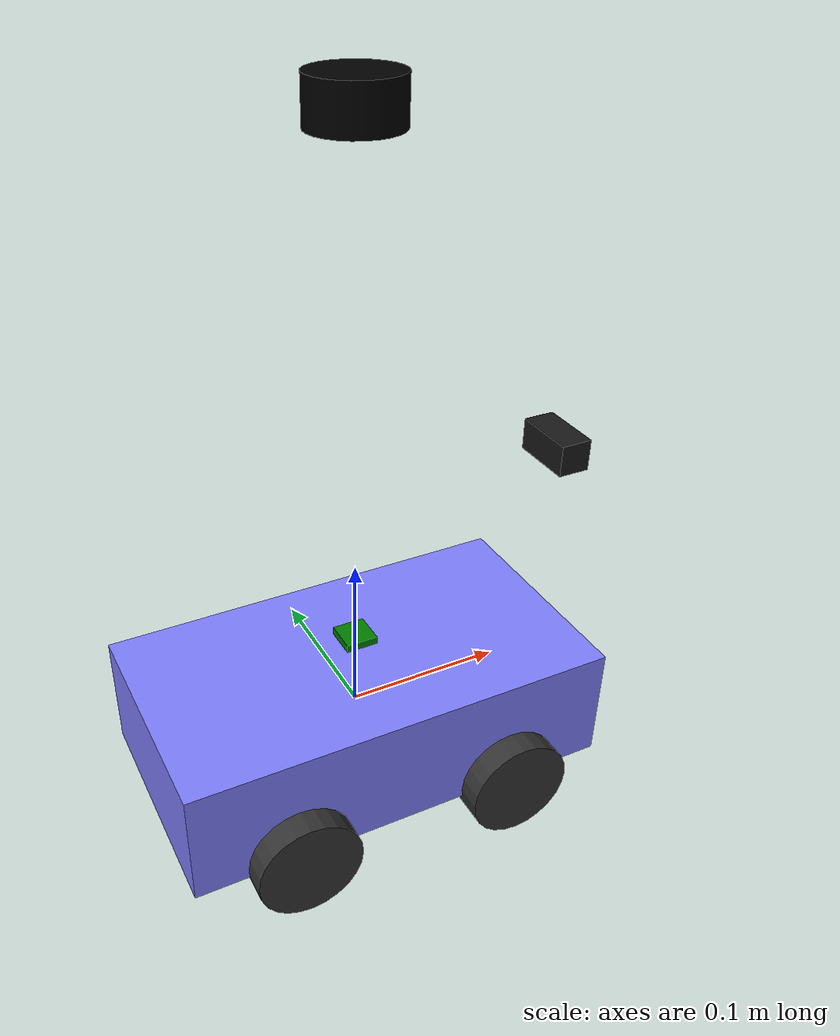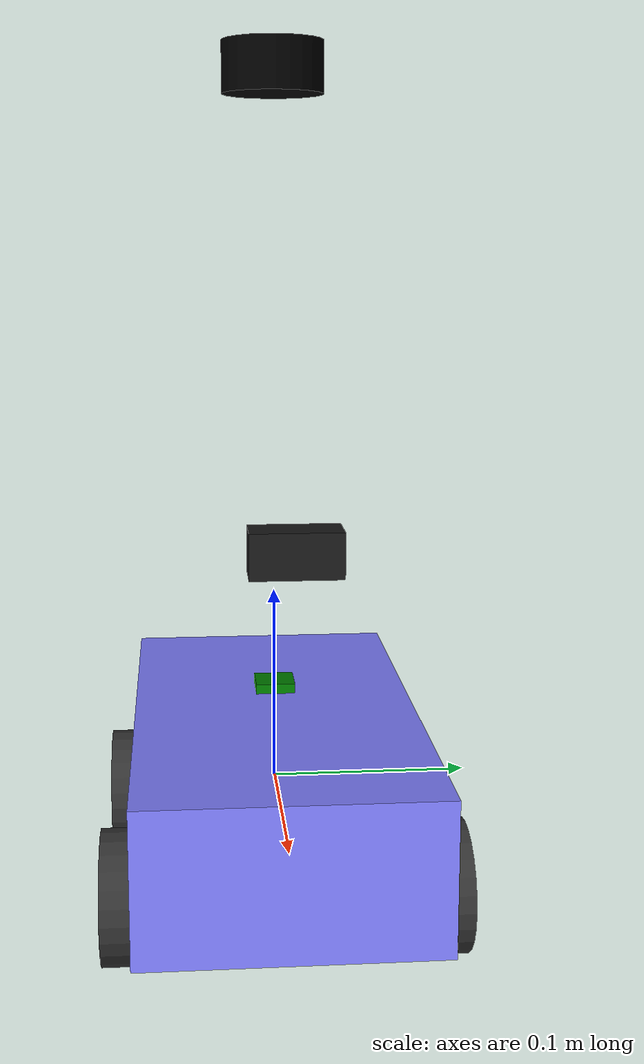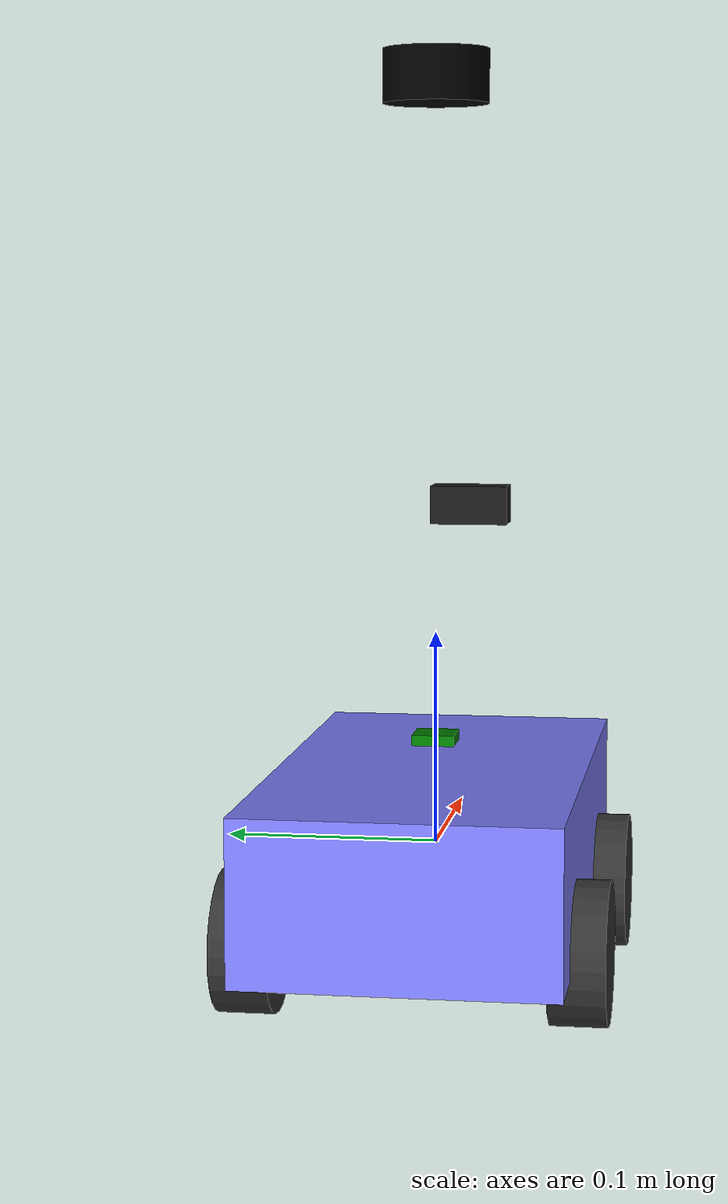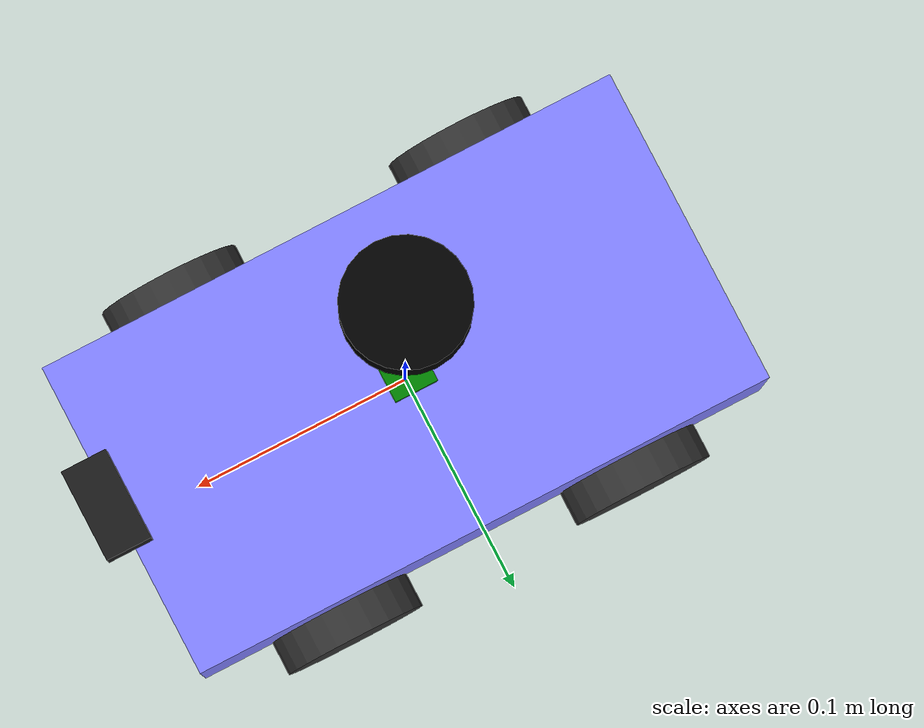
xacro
<?xml version="1.0" ?>
<robot xmlns:xacro="http://www.ros.org/wiki/xacro" name="smb">

  <xacro:property name="chassis_length"  value="0.27"/>
  <xacro:property name="chassis_width"   value="0.145"/>
  <xacro:property name="chassis_height"  value="0.075"/>
  <xacro:property name="wheel_radius"    value="0.0325"/>
  <xacro:property name="wheel_thickness" value="0.026"/>
  <xacro:property name="track"           value="0.150"/>
  <xacro:property name="wheelbase"       value="0.140"/>
  <xacro:property name="wheel_offset_x"  value="${wheelbase/2}"/>

  <xacro:property name="lidar_offset_z" value="0.36"/>
  <xacro:property name="imu_offset_z"   value="0.05"/>

  <!-- Masses: chassis dominates the dynamics. -->
  <xacro:property name="chassis_mass"   value="2.0"/>
  <xacro:property name="wheel_mass"     value="0.06"/>

  <link name="base_link">
    <inertial>
      <origin xyz="0 0 0" rpy="0 0 0"/>
      <mass value="${chassis_mass}"/>
      <inertia
        ixx="0.0109" ixy="0" ixz="0"
        iyy="0.0178" iyz="0"
        izz="0.0231"/>
    </inertial>
    <visual>
      <origin xyz="0 0 0" rpy="0 0 0"/>
      <geometry>
        <box size="${chassis_length} ${chassis_width} ${chassis_height}"/>
      </geometry>
      <material name="chassis_blue">
        <color rgba="0.5 0.5 1.0 1"/>
      </material>
    </visual>
    <collision>
      <origin xyz="0 0 0" rpy="0 0 0"/>
      <geometry>
        <box size="${chassis_length} ${chassis_width} ${chassis_height}"/>
      </geometry>
    </collision>
  </link>

  <!-- Macro for 4WD continuous wheels -->
  <xacro:macro name="diff_wheel" params="name offset_x offset_y">
    <joint name="${name}_joint" type="continuous">
      <parent link="base_link"/>
      <child link="${name}"/>
      <origin xyz="${offset_x} ${offset_y} -${wheel_radius}" rpy="-1.5707 0 0"/>
      <axis xyz="0 0 1"/>
      <dynamics damping="0.1" friction="0.1"/>
    </joint>
    <link name="${name}">
      <inertial>
        <origin xyz="0 0 0" rpy="0 0 0"/>
        <mass value="${wheel_mass}"/>
        <inertia
          ixx="0.0000192" ixy="0" ixz="0"
          iyy="0.0000192" iyz="0"
          izz="0.0000317"/>
      </inertial>
      <visual>
        <origin xyz="0 0 0" rpy="0 0 0"/>
        <geometry>
          <cylinder radius="${wheel_radius}" length="${wheel_thickness}"/>
        </geometry>
        <material name="wheel_dark">
          <color rgba="0.2 0.2 0.2 1"/>
        </material>
      </visual>
      <collision>
        <origin xyz="0 0 0" rpy="0 0 0"/>
        <geometry>
          <cylinder radius="${wheel_radius}" length="${wheel_thickness}"/>
        </geometry>
      </collision>
    </link>
  </xacro:macro>

  <!-- 4 continuous wheels for 4WD differential drive -->
  <xacro:diff_wheel name="front_left_wheel"  offset_x="${wheel_offset_x}"  offset_y="${track/2}"/>
  <xacro:diff_wheel name="rear_left_wheel"   offset_x="-${wheel_offset_x}" offset_y="${track/2}"/>
  <xacro:diff_wheel name="front_right_wheel" offset_x="${wheel_offset_x}"  offset_y="-${track/2}"/>
  <xacro:diff_wheel name="rear_right_wheel"  offset_x="-${wheel_offset_x}" offset_y="-${track/2}"/>

  <xacro:property name="lidar_offset_x" value="0.0"/>
  <joint name="lidar_joint" type="fixed">
    <parent link="base_link"/>
    <child link="laser_frame"/>
    <origin xyz="${lidar_offset_x} 0 ${lidar_offset_z}" rpy="0 0 1.5708"/>
  </joint>
  <link name="laser_frame">
    <inertial>
      <origin xyz="0 0 0" rpy="0 0 0"/>
      <mass value="0.1"/>
      <inertia ixx="0.001" ixy="0" ixz="0" iyy="0.001" iyz="0" izz="0.001"/>
    </inertial>
    <visual>
      <origin xyz="0 0 0" rpy="0 0 0"/>
      <geometry>
        <cylinder radius="0.025" length="0.025"/>
      </geometry>
      <material name="lidar_black">
        <color rgba="0 0 0 1"/>
      </material>
    </visual>
    <collision>
      <origin xyz="0 0 0" rpy="0 0 0"/>
      <geometry>
        <cylinder radius="0.025" length="0.025"/>
      </geometry>
    </collision>
  </link>

  <!-- IMU frame: inside chassis, +z by imu_offset_z. -->
  <joint name="imu_joint" type="fixed">
    <parent link="base_link"/>
    <child link="imu_link"/>
    <origin xyz="0 0 ${imu_offset_z}" rpy="0 0 0"/>
  </joint>
  <link name="imu_link">
    <inertial>
      <origin xyz="0 0 0" rpy="0 0 0"/>
      <mass value="0.01"/>
      <inertia ixx="0.0001" ixy="0" ixz="0" iyy="0.0001" iyz="0" izz="0.0001"/>
    </inertial>
    <visual>
      <origin xyz="0 0 0" rpy="0 0 0"/>
      <geometry>
        <box size="0.02 0.02 0.005"/>
      </geometry>
      <material name="imu_green">
        <color rgba="0 0.5 0 1"/>
      </material>
    </visual>
    <collision>
      <origin xyz="0 0 0" rpy="0 0 0"/>
      <geometry>
        <box size="0.02 0.02 0.005"/>
      </geometry>
    </collision>
  </link>

  <!-- Ultrasonic Sensors -->
  <!-- Front -->
  <joint name="us_front_joint" type="fixed">
    <parent link="base_link"/>
    <child link="us_front_link"/>
    <origin xyz="0.135 0 0" rpy="0 0 0"/>
  </joint>
  <link name="us_front_link"/>

  <!-- Rear -->
  <joint name="us_rear_joint" type="fixed">
    <parent link="base_link"/>
    <child link="us_rear_link"/>
    <origin xyz="-0.135 0 0" rpy="0 0 3.14159"/>
  </joint>
  <link name="us_rear_link"/>

  <!-- Left -->
  <joint name="us_left_joint" type="fixed">
    <parent link="base_link"/>
    <child link="us_left_link"/>
    <origin xyz="0 0.0725 0" rpy="0 0 1.5708"/>
  </joint>
  <link name="us_left_link"/>

  <!-- Right -->
  <joint name="us_right_joint" type="fixed">
    <parent link="base_link"/>
    <child link="us_right_link"/>
    <origin xyz="0 -0.0725 0" rpy="0 0 -1.5708"/>
  </joint>
  <link name="us_right_link"/>

  <!-- AI Camera IMX500 -->
  <joint name="camera_joint" type="fixed">
    <parent link="base_link"/>
    <child link="camera_link"/>
    <!-- Positioned at the front of the robot, facing forward (URDF +X) -->
    <origin xyz="0.135 0 0.15" rpy="0 0 0"/>
  </joint>
  <link name="camera_link">
    <inertial>
      <origin xyz="0 0 0" rpy="0 0 0"/>
      <mass value="0.05"/>
      <inertia ixx="0.0001" ixy="0" ixz="0" iyy="0.0001" iyz="0" izz="0.0001"/>
    </inertial>
    <visual>
      <origin xyz="0 0 0" rpy="0 0 0"/>
      <geometry>
        <box size="0.02 0.04 0.02"/>
      </geometry>
      <material name="camera_black">
        <color rgba="0.1 0.1 0.1 1"/>
      </material>
    </visual>
    <collision>
      <origin xyz="0 0 0" rpy="0 0 0"/>
      <geometry>
        <box size="0.02 0.04 0.02"/>
      </geometry>
    </collision>
  </link>

</robot>
